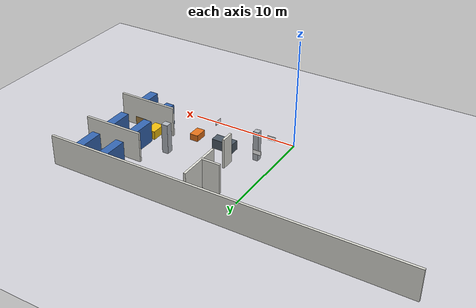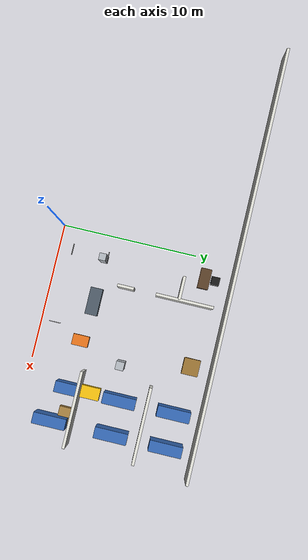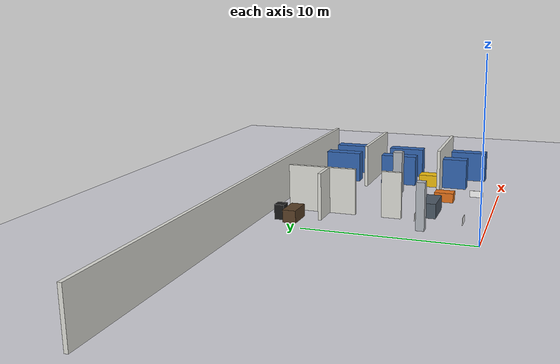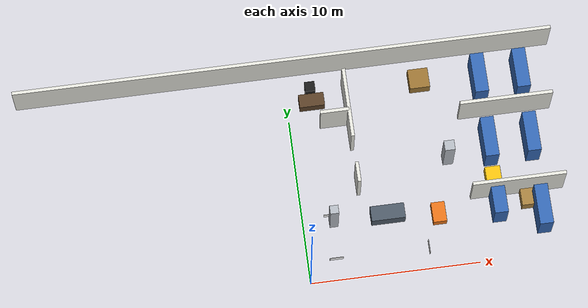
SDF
<sdf version="1.9">
 <world name="realistic_facility_world">
  <model name="ground_plane">
   <static>true</static>
   <link name="link">
    <collision name="collision">
     <geometry><plane><normal>0 0 1</normal><size>36 30</size></plane></geometry>
    </collision>
    <visual name="visual">
     <geometry><plane><normal>0 0 1</normal><size>36 30</size></plane></geometry>
     <material>
      <ambient>0.82 0.82 0.85 1</ambient>
      <diffuse>0.82 0.82 0.85 1</diffuse>
      <specular>0.15 0.15 0.15 1</specular>
     </material>
    </visual>
   </link>
  </model>
  <model name="wall_north">
   <static>true</static>
   <pose>0.000 13.000 1.4 0 0 0</pose>
   <link name="link">
    <collision name="collision"><geometry><box><size>32.000 0.200 2.8</size></box></geometry></collision>
    <visual name="visual">
     <geometry><box><size>32.000 0.200 2.8</size></box></geometry>
     <material>
      <ambient>0.88 0.88 0.85 1</ambient>
      <diffuse>0.88 0.88 0.85 1</diffuse>
      <specular>0.1 0.1 0.1 1</specular>
     </material>
    </visual>
   </link>
  </model>
  <model name="wall_office_e_south">
   <static>true</static>
   <pose>3.500 5.600 1.4 0 0 0</pose>
   <link name="link">
    <collision name="collision"><geometry><box><size>0.200 1.200 2.8</size></box></geometry></collision>
    <visual name="visual">
     <geometry><box><size>0.200 1.200 2.8</size></box></geometry>
     <material>
      <ambient>0.88 0.88 0.85 1</ambient>
      <diffuse>0.88 0.88 0.85 1</diffuse>
      <specular>0.1 0.1 0.1 1</specular>
     </material>
    </visual>
   </link>
  </model>
  <model name="wall_office_e_north">
   <static>true</static>
   <pose>3.500 9.900 1.4 0 0 0</pose>
   <link name="link">
    <collision name="collision"><geometry><box><size>0.200 4.200 2.8</size></box></geometry></collision>
    <visual name="visual">
     <geometry><box><size>0.200 4.200 2.8</size></box></geometry>
     <material>
      <ambient>0.88 0.88 0.85 1</ambient>
      <diffuse>0.88 0.88 0.85 1</diffuse>
      <specular>0.1 0.1 0.1 1</specular>
     </material>
    </visual>
   </link>
  </model>
  <model name="wall_archive_s">
   <static>true</static>
   <pose>2.650 9.500 1.4 0 0 0</pose>
   <link name="link">
    <collision name="collision"><geometry><box><size>1.700 0.200 2.8</size></box></geometry></collision>
    <visual name="visual">
     <geometry><box><size>1.700 0.200 2.8</size></box></geometry>
     <material>
      <ambient>0.88 0.88 0.85 1</ambient>
      <diffuse>0.88 0.88 0.85 1</diffuse>
      <specular>0.1 0.1 0.1 1</specular>
     </material>
    </visual>
   </link>
  </model>
  <model name="wall_wh_div_1">
   <static>true</static>
   <pose>12.750 4.000 1.4 0 0 0</pose>
   <link name="link">
    <collision name="collision"><geometry><box><size>5.500 0.200 2.8</size></box></geometry></collision>
    <visual name="visual">
     <geometry><box><size>5.500 0.200 2.8</size></box></geometry>
     <material>
      <ambient>0.88 0.88 0.85 1</ambient>
      <diffuse>0.88 0.88 0.85 1</diffuse>
      <specular>0.1 0.1 0.1 1</specular>
     </material>
    </visual>
   </link>
  </model>
  <model name="wall_wh_div_2">
   <static>true</static>
   <pose>12.750 9.000 1.4 0 0 0</pose>
   <link name="link">
    <collision name="collision"><geometry><box><size>5.500 0.200 2.8</size></box></geometry></collision>
    <visual name="visual">
     <geometry><box><size>5.500 0.200 2.8</size></box></geometry>
     <material>
      <ambient>0.88 0.88 0.85 1</ambient>
      <diffuse>0.88 0.88 0.85 1</diffuse>
      <specular>0.1 0.1 0.1 1</specular>
     </material>
    </visual>
   </link>
  </model>
  <model name="pillar_center_2">
   <static>true</static>
   <pose>1.800 3.500 1.4 0 0 0</pose>
   <link name="link">
    <collision name="collision"><geometry><box><size>0.500 0.500 2.8</size></box></geometry></collision>
    <visual name="visual">
     <geometry><box><size>0.500 0.500 2.8</size></box></geometry>
     <material><ambient>0.7 0.72 0.75 1</ambient><diffuse>0.7 0.72 0.75 1</diffuse></material>
    </visual>
   </link>
  </model>
  <model name="pillar_wh_1">
   <static>true</static>
   <pose>9.000 6.500 1.4 0 0 0</pose>
   <link name="link">
    <collision name="collision"><geometry><box><size>0.600 0.600 2.8</size></box></geometry></collision>
    <visual name="visual">
     <geometry><box><size>0.600 0.600 2.8</size></box></geometry>
     <material><ambient>0.7 0.72 0.75 1</ambient><diffuse>0.7 0.72 0.75 1</diffuse></material>
    </visual>
   </link>
  </model>
  <model name="wh_rack_1">
   <static>true</static>
   <pose>11.500 3.100 1.000 0 0 0</pose>
   <link name="link">
    <collision name="collision"><geometry><box><size>0.800 1.600 2.000</size></box></geometry></collision>
    <visual name="visual">
     <geometry><box><size>0.800 1.600 2.000</size></box></geometry>
     <material><ambient>0.20 0.40 0.70 1</ambient><diffuse>0.20 0.40 0.70 1</diffuse></material>
    </visual>
   </link>
  </model>
  <model name="wh_rack_2">
   <static>true</static>
   <pose>11.500 7.000 1.000 0 0 0</pose>
   <link name="link">
    <collision name="collision"><geometry><box><size>0.800 2.400 2.000</size></box></geometry></collision>
    <visual name="visual">
     <geometry><box><size>0.800 2.400 2.000</size></box></geometry>
     <material><ambient>0.20 0.40 0.70 1</ambient><diffuse>0.20 0.40 0.70 1</diffuse></material>
    </visual>
   </link>
  </model>
  <model name="wh_rack_3">
   <static>true</static>
   <pose>11.500 11.000 1.000 0 0 0</pose>
   <link name="link">
    <collision name="collision"><geometry><box><size>0.800 2.400 2.000</size></box></geometry></collision>
    <visual name="visual">
     <geometry><box><size>0.800 2.400 2.000</size></box></geometry>
     <material><ambient>0.20 0.40 0.70 1</ambient><diffuse>0.20 0.40 0.70 1</diffuse></material>
    </visual>
   </link>
  </model>
  <model name="wh_rack_4">
   <static>true</static>
   <pose>14.000 2.500 1.000 0 0 0</pose>
   <link name="link">
    <collision name="collision"><geometry><box><size>0.800 2.400 2.000</size></box></geometry></collision>
    <visual name="visual">
     <geometry><box><size>0.800 2.400 2.000</size></box></geometry>
     <material><ambient>0.20 0.40 0.70 1</ambient><diffuse>0.20 0.40 0.70 1</diffuse></material>
    </visual>
   </link>
  </model>
  <model name="wh_rack_5">
   <static>true</static>
   <pose>14.000 7.000 1.000 0 0 0</pose>
   <link name="link">
    <collision name="collision"><geometry><box><size>0.800 2.400 2.000</size></box></geometry></collision>
    <visual name="visual">
     <geometry><box><size>0.800 2.400 2.000</size></box></geometry>
     <material><ambient>0.20 0.40 0.70 1</ambient><diffuse>0.20 0.40 0.70 1</diffuse></material>
    </visual>
   </link>
  </model>
  <model name="wh_rack_6">
   <static>true</static>
   <pose>14.000 11.000 1.000 0 0 0</pose>
   <link name="link">
    <collision name="collision"><geometry><box><size>0.800 2.400 2.000</size></box></geometry></collision>
    <visual name="visual">
     <geometry><box><size>0.800 2.400 2.000</size></box></geometry>
     <material><ambient>0.20 0.40 0.70 1</ambient><diffuse>0.20 0.40 0.70 1</diffuse></material>
    </visual>
   </link>
  </model>
  <model name="wh_pallets">
   <static>true</static>
   <pose>8.000 11.500 0.400 0 0 0</pose>
   <link name="link">
    <collision name="collision"><geometry><box><size>1.200 1.200 0.800</size></box></geometry></collision>
    <visual name="visual">
     <geometry><box><size>1.200 1.200 0.800</size></box></geometry>
     <material><ambient>0.60 0.45 0.20 1</ambient><diffuse>0.60 0.45 0.20 1</diffuse></material>
    </visual>
   </link>
  </model>
  <model name="loading_pallet_stack">
   <static>true</static>
   <pose>13.500 3.500 0.400 0 0 0</pose>
   <link name="link">
    <collision name="collision"><geometry><box><size>1.200 1.200 0.800</size></box></geometry></collision>
    <visual name="visual">
     <geometry><box><size>1.200 1.200 0.800</size></box></geometry>
     <material><ambient>0.65 0.50 0.25 1</ambient><diffuse>0.65 0.50 0.25 1</diffuse></material>
    </visual>
   </link>
  </model>
  <model name="wh_workstation_1">
   <static>true</static>
   <pose>5.000 3.500 0.450 0 0 0</pose>
   <link name="link">
    <collision name="collision"><geometry><box><size>2.000 0.900 0.900</size></box></geometry></collision>
    <visual name="visual">
     <geometry><box><size>2.000 0.900 0.900</size></box></geometry>
     <material><ambient>0.30 0.35 0.40 1</ambient><diffuse>0.30 0.35 0.40 1</diffuse></material>
    </visual>
   </link>
  </model>
  <model name="office_desk_2">
   <static>true</static>
   <pose>1.500 11.000 0.380 0 0 0</pose>
   <link name="link">
    <collision name="collision"><geometry><box><size>1.500 0.800 0.750</size></box></geometry></collision>
    <visual name="visual">
     <geometry><box><size>1.500 0.800 0.750</size></box></geometry>
     <material><ambient>0.35 0.25 0.15 1</ambient><diffuse>0.35 0.25 0.15 1</diffuse></material>
    </visual>
   </link>
  </model>
  <model name="office_chair_2">
   <static>true</static>
   <pose>1.500 11.800 0.450 0 0 0</pose>
   <link name="link">
    <collision name="collision"><geometry><box><size>0.600 0.600 0.900</size></box></geometry></collision>
    <visual name="visual">
     <geometry><box><size>0.600 0.600 0.900</size></box></geometry>
     <material><ambient>0.10 0.10 0.10 1</ambient><diffuse>0.10 0.10 0.10 1</diffuse></material>
    </visual>
   </link>
  </model>
  <model name="sign_j4_warehouse">
   <static>true</static>
   <pose>1.650 1.100 0.850 0.0 0.0 3.1416</pose>
   <link name="link">
    <visual name="board_visual">
     <geometry><box><size>0.8 0.03 0.4</size></box></geometry>
     <material>
      <ambient>1.0 1.0 1.0 1.0</ambient>
      <diffuse>1.0 1.0 1.0 1.0</diffuse>
      <specular>0.2 0.2 0.2 1.0</specular>
      <emissive>0.08 0.08 0.08 1.0</emissive>
      <pbr>
       <metal>
        <albedo_map>/home/soham-darade/CV_Autonomous_Navigation/ros2_ws/src/autonomous_robot_gazebo/materials/textures/signs/warehouse_right.png</albedo_map>
        <roughness>0.2</roughness>
        <metalness>0.0</metalness>
       </metal>
      </pbr>
     </material>
    </visual>
    <collision name="board_collision"><geometry><box><size>0.8 0.03 0.4</size></box></geometry></collision>
   </link>
  </model>
  <model name="sign_j4_hospital">
   <static>true</static>
   <pose>1.650 3.750 0.850 0.0 0.0 0.0000</pose>
   <link name="link">
    <visual name="board_visual">
     <geometry><box><size>0.8 0.03 0.4</size></box></geometry>
     <material>
      <ambient>1.0 1.0 1.0 1.0</ambient>
      <diffuse>1.0 1.0 1.0 1.0</diffuse>
      <specular>0.2 0.2 0.2 1.0</specular>
      <emissive>0.08 0.08 0.08 1.0</emissive>
      <pbr>
       <metal>
        <albedo_map>/home/soham-darade/CV_Autonomous_Navigation/ros2_ws/src/autonomous_robot_gazebo/materials/textures/signs/hospital_straight.png</albedo_map>
        <roughness>0.2</roughness>
        <metalness>0.0</metalness>
       </metal>
      </pbr>
     </material>
    </visual>
    <collision name="board_collision"><geometry><box><size>0.8 0.03 0.4</size></box></geometry></collision>
   </link>
  </model>
  <model name="sign_j6_loading">
   <static>true</static>
   <pose>7.100 1.100 0.850 0.0 0.0 1.5708</pose>
   <link name="link">
    <visual name="board_visual">
     <geometry><box><size>0.8 0.03 0.4</size></box></geometry>
     <material>
      <ambient>1.0 1.0 1.0 1.0</ambient>
      <diffuse>1.0 1.0 1.0 1.0</diffuse>
      <specular>0.2 0.2 0.2 1.0</specular>
      <emissive>0.08 0.08 0.08 1.0</emissive>
      <pbr>
       <metal>
        <albedo_map>/home/soham-darade/CV_Autonomous_Navigation/ros2_ws/src/autonomous_robot_gazebo/materials/textures/signs/loading_right.png</albedo_map>
        <roughness>0.2</roughness>
        <metalness>0.0</metalness>
       </metal>
      </pbr>
     </material>
    </visual>
    <collision name="board_collision"><geometry><box><size>0.8 0.03 0.4</size></box></geometry></collision>
   </link>
  </model>
  <model name="dynamic_warehouse_cart">
   <pose>8.0 3.2035 0.3 0 0 1.5708</pose>
   <link name="cart_link">
    <inertial><mass>25.0</mass><inertia><ixx>1.5</ixx><iyy>1.5</iyy><izz>1.5</izz></inertia></inertial>
    <collision name="cart_collision"><geometry><box><size>1.2 0.8 0.6</size></box></geometry></collision>
    <visual name="cart_visual">
     <geometry><box><size>1.2 0.8 0.6</size></box></geometry>
     <material><ambient>0.9 0.45 0.1 1</ambient><diffuse>0.9 0.45 0.1 1</diffuse></material>
    </visual>
   </link>
   <plugin filename="gz-sim-velocity-control-system" name="gz::sim::systems::VelocityControl">
    <link_name>cart_link</link_name>
    <topic>/cart/cmd_vel</topic>
   </plugin>
  </model>
  <model name="dynamic_forklift">
   <pose>11.5 4.8 0.4 0 0 1.5708</pose>
   <link name="forklift_link">
    <inertial><mass>40.0</mass><inertia><ixx>2.5</ixx><iyy>2.5</iyy><izz>2.5</izz></inertia></inertial>
    <collision name="forklift_collision"><geometry><box><size>1.4 0.9 0.8</size></box></geometry></collision>
    <visual name="forklift_visual">
     <geometry><box><size>1.4 0.9 0.8</size></box></geometry>
     <material><ambient>0.95 0.75 0.05 1</ambient><diffuse>0.95 0.75 0.05 1</diffuse></material>
    </visual>
   </link>
   <plugin filename="gz-sim-velocity-control-system" name="gz::sim::systems::VelocityControl">
    <link_name>forklift_link</link_name>
    <topic>/forklift/cmd_vel</topic>
   </plugin>
  </model>
 </world>
</sdf>
